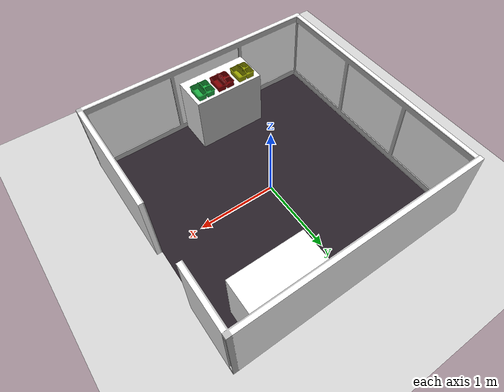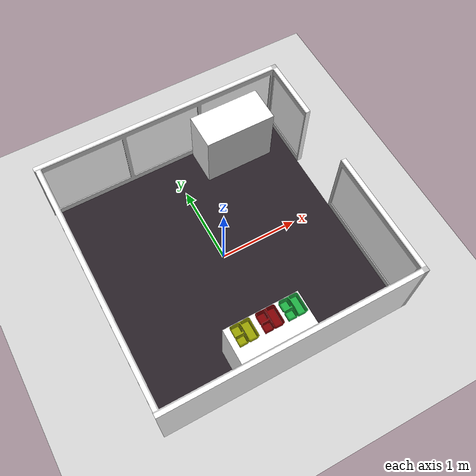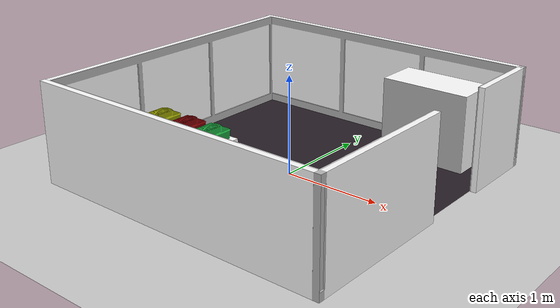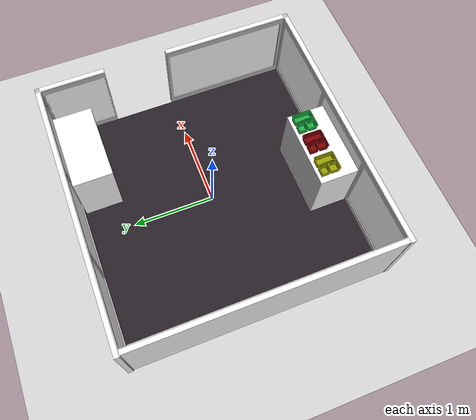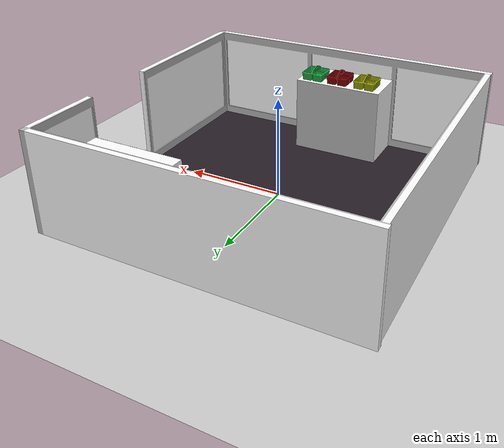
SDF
<?xml version="1.0" ?>
<sdf version="1.4">
  <world name="default">

    <include>
      <uri>model://ground_plane</uri>
      <pose>0 0 -0.005 0 0 0</pose>
    </include>

    <include>
      <uri>model://fetchit_arena</uri>
      <name>fetchit_arena1</name>
      <pose>0 0 0 0 0 0</pose>
    </include>

    <include>
      <uri>model://fetchit_table_fetch</uri>
      <name>fetchit_table_fetch1</name>
      <pose>-0.135 -1.28849 0.0 0 0 3.1416</pose>
    </include>

    <include>
      <uri>model://fetchit_table_theconstruct</uri>
      <name>fetchit_table_theconstruct1</name>
      <pose>0.815 1.28179 0.0 0 0 0</pose>
    </include>

    <include>
      <uri>model://caddy_green</uri>
      <name>caddy_green1</name>
      <pose>0.168355 -1.20441 0.826729 0 0 0</pose>
    </include>

    <include>
      <uri>model://caddy_red</uri>
      <name>caddy_red1</name>
      <pose>-0.113059 -1.20441 0.826729 0 0 0</pose>
    </include>

    <include>
      <uri>model://caddy_yellow</uri>
      <name>caddy_yellow1</name>
      <pose>-0.414898 -1.20441 0.826729 0 0 0</pose>
    </include>

    <light name='user_point_light_0' type='point'>
      <pose frame=''>1.0 1.0 3.5 0 0 0</pose>
      <diffuse>0.7 0.7 0.7 1</diffuse>
      <specular>0.1 0.1 0.1 1</specular>
      <attenuation>
        <range>10</range>
        <constant>0.5</constant>
        <linear>0.01</linear>
        <quadratic>0.001</quadratic>
      </attenuation>
      <cast_shadows>0</cast_shadows>
      <direction>0 0 -1</direction>
    </light>

    <light name='user_point_light_1' type='point'>
      <pose frame=''>-1.0 1.0 3.5 0 0 0</pose>
      <diffuse>0.7 0.7 0.7 1</diffuse>
      <specular>0.1 0.1 0.1 1</specular>
      <attenuation>
        <range>10</range>
        <constant>0.5</constant>
        <linear>0.01</linear>
        <quadratic>0.001</quadratic>
      </attenuation>
      <cast_shadows>0</cast_shadows>
      <direction>0 0 -1</direction>
    </light>

    <light name='user_point_light_2' type='point'>
      <pose frame=''>-1.0 -1.0 3.5 0 0 0</pose>
      <diffuse>0.7 0.7 0.7 1</diffuse>
      <specular>0.1 0.1 0.1 1</specular>
      <attenuation>
        <range>10</range>
        <constant>0.5</constant>
        <linear>0.01</linear>
        <quadratic>0.001</quadratic>
      </attenuation>
      <cast_shadows>0</cast_shadows>
      <direction>0 0 -1</direction>
    </light>

    <light name='user_point_light_3' type='point'>
      <pose frame=''>1.0 -1.0 3.5 0 0 0</pose>
      <diffuse>0.7 0.7 0.7 1</diffuse>
      <specular>0.1 0.1 0.1 1</specular>
      <attenuation>
        <range>10</range>
        <constant>0.5</constant>
        <linear>0.01</linear>
        <quadratic>0.001</quadratic>
      </attenuation>
      <cast_shadows>0</cast_shadows>
      <direction>0 0 -1</direction>
    </light>

  </world>
</sdf>

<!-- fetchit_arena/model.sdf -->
<sdf version='1.4'>
  <model name="fetchit_simple_env">
      <static>1</static>
      <link name='link'>
        <visual name='visual'>
          <geometry>
            <mesh>
              <uri>model://fetchit_arena/meshes/fetchit_arena1.dae</uri>
              <scale>1 1 1</scale>
            </mesh>
          </geometry>
        </visual>
        <collision name='collision'>
          <geometry>
            <mesh>
              <uri>model://fetchit_arena/meshes/fetchit_arena1.dae</uri>
              <scale>1 1 1</scale>
            </mesh>
          </geometry>
          <surface>
            <friction>
              <ode>
                <mu>30.0</mu>
                <mu2>30.0</mu2>
              </ode>
            </friction>
            <contact>
              <ode>
                <soft_cfm>0</soft_cfm>
    	          <soft_erp>0.2</soft_erp>
    	          <kp>1e+13</kp>
    	          <kd>1</kd>
    	          <max_vel>0.01</max_vel>
    	          <min_depth>0</min_depth>
              </ode>
            </contact>
          </surface>
        </collision>
        <velocity_decay>
          <linear>0.000000</linear>
          <angular>0.000000</angular>
        </velocity_decay>
        <self_collide>0</self_collide>
        <kinematic>0</kinematic>
        <gravity>1</gravity>
      </link>
  </model>
</sdf>

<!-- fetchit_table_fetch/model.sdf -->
<sdf version='1.4'>
  <model name="fetchit_table_fetch">
      <static>1</static>
      <link name='link'>
        <inertial>
          <mass>0.0592855</mass>
          <inertia>
            <ixx>2.31818050784e-05</ixx>
            <ixy>0.000000</ixy>
            <ixz>0.000000</ixz>
            <iyy>2.31851837098e-05</iyy>
            <iyz>0.000000</iyz>
            <izz>8.88944636856e-06</izz>
          </inertia>
        </inertial>
        <collision name='collision'>
          <geometry>
            <mesh>
              <uri>model://fetchit_table_fetch/meshes/simple_table.stl</uri>
              <scale>1 1 1</scale>
            </mesh>
          </geometry>
          <surface>
            <friction>
              <ode>
                <mu>30.0</mu>
                <mu2>30.0</mu2>
              </ode>
            </friction>
          </surface>
        </collision>
        <visual name='visual'>
          <geometry>
            <mesh>
              <uri>model://fetchit_table_fetch/meshes/table_fetch.dae</uri>
              <scale>1 1 1</scale>
            </mesh>
          </geometry>
        </visual>
        <velocity_decay>
          <linear>0.000000</linear>
          <angular>0.000000</angular>
        </velocity_decay>
        <self_collide>0</self_collide>
        <kinematic>0</kinematic>
        <gravity>1</gravity>
      </link>
  </model>
</sdf>

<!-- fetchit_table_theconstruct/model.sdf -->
<sdf version='1.4'>
  <model name="fetchit_table_theconstruct">
      <static>1</static>
      <link name='link'>
        <inertial>
          <mass>0.0592855</mass>
          <inertia>
            <ixx>2.31818050784e-05</ixx>
            <ixy>0.000000</ixy>
            <ixz>0.000000</ixz>
            <iyy>2.31851837098e-05</iyy>
            <iyz>0.000000</iyz>
            <izz>8.88944636856e-06</izz>
          </inertia>
        </inertial>
        <collision name='collision'>
          <geometry>
            <mesh>
              <uri>model://fetchit_table_theconstruct/meshes/simple_table.stl</uri>
              <scale>1 1 1</scale>
            </mesh>
          </geometry>
          <surface>
            <friction>
              <ode>
                <mu>30.0</mu>
                <mu2>30.0</mu2>
              </ode>
            </friction>
          </surface>
        </collision>
        <visual name='visual'>
          <geometry>
            <mesh>
              <uri>model://fetchit_table_theconstruct/meshes/table_theconstruct.dae</uri>
              <scale>1 1 1</scale>
            </mesh>
          </geometry>
        </visual>
        <velocity_decay>
          <linear>0.000000</linear>
          <angular>0.000000</angular>
        </velocity_decay>
        <self_collide>0</self_collide>
        <kinematic>0</kinematic>
        <gravity>1</gravity>
      </link>
  </model>
</sdf>

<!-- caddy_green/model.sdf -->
<sdf version='1.4'>
  <model name="caddy_green">
      <static>1</static>
      <link name='link'>
        <inertial>
          <mass>0.0680389</mass>
          <inertia>
            <ixx>0.00040636575898</ixx>
            <ixy>0.000000</ixy>
            <ixz>0.000000</ixz>
            <iyy>0.00040636575898</iyy>
            <iyz>0.000000</iyz>
            <izz>0.000625974918075</izz>
          </inertia>
        </inertial>
        <collision name='collision'>
          <geometry>
            <mesh>
              <uri>model://caddy_green/meshes/Romanoff_Small_Utility_Caddy_cof.stl</uri>
              <scale>1 1 1</scale>
            </mesh>
          </geometry>
          <surface>
            <friction>
              <ode>
                <mu>1.0</mu>
                <mu2>1.0</mu2>
              </ode>
            </friction>
          </surface>
        </collision>

        <visual name='visual'>
          <geometry>
            <mesh>
              <uri>model://caddy_green/meshes/Romanoff_Small_Utility_Caddy_cof_green.dae</uri>
              <scale>1 1 1</scale>
            </mesh>
          </geometry>
        </visual>
        <velocity_decay>
          <linear>0.000000</linear>
          <angular>0.000000</angular>
        </velocity_decay>
        <self_collide>0</self_collide>
        <kinematic>0</kinematic>
        <gravity>1</gravity>
      </link>
  </model>
</sdf>

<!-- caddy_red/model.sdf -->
<sdf version='1.4'>
  <model name="caddy_red">
      <static>1</static>
      <link name='link'>
        <inertial>
          <mass>0.0680389</mass>
          <inertia>
            <ixx>0.00040636575898</ixx>
            <ixy>0.000000</ixy>
            <ixz>0.000000</ixz>
            <iyy>0.00040636575898</iyy>
            <iyz>0.000000</iyz>
            <izz>0.000625974918075</izz>
          </inertia>
        </inertial>
        <collision name='collision'>
          <geometry>
            <mesh>
              <uri>model://caddy_red/meshes/Romanoff_Small_Utility_Caddy_cof.stl</uri>
              <scale>1 1 1</scale>
            </mesh>
          </geometry>
          <surface>
            <friction>
              <ode>
                <mu>1.0</mu>
                <mu2>1.0</mu2>
              </ode>
            </friction>
          </surface>
        </collision>

        <visual name='visual'>
          <geometry>
            <mesh>
              <uri>model://caddy_red/meshes/Romanoff_Small_Utility_Caddy_cof_red.dae</uri>
              <scale>1 1 1</scale>
            </mesh>
          </geometry>
        </visual>
        <velocity_decay>
          <linear>0.000000</linear>
          <angular>0.000000</angular>
        </velocity_decay>
        <self_collide>0</self_collide>
        <kinematic>0</kinematic>
        <gravity>1</gravity>
      </link>
  </model>
</sdf>

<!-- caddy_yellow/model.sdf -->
<sdf version='1.4'>
  <model name="caddy_yellow">
      <static>1</static>
      <link name='link'>
        <inertial>
          <mass>0.0680389</mass>
          <inertia>
            <ixx>0.00040636575898</ixx>
            <ixy>0.000000</ixy>
            <ixz>0.000000</ixz>
            <iyy>0.00040636575898</iyy>
            <iyz>0.000000</iyz>
            <izz>0.000625974918075</izz>
          </inertia>
        </inertial>
        <collision name='collision'>
          <geometry>
            <mesh>
              <uri>model://caddy_yellow/meshes/Romanoff_Small_Utility_Caddy_cof.stl</uri>
              <scale>1 1 1</scale>
            </mesh>
          </geometry>
          <surface>
            <friction>
              <ode>
                <mu>1.0</mu>
                <mu2>1.0</mu2>
              </ode>
            </friction>
          </surface>
        </collision>

        <visual name='visual'>
          <geometry>
            <mesh>
              <uri>model://caddy_yellow/meshes/Romanoff_Small_Utility_Caddy_cof_yellow.dae</uri>
              <scale>1 1 1</scale>
            </mesh>
          </geometry>
        </visual>
        <velocity_decay>
          <linear>0.000000</linear>
          <angular>0.000000</angular>
        </velocity_decay>
        <self_collide>0</self_collide>
        <kinematic>0</kinematic>
        <gravity>1</gravity>
      </link>
  </model>
</sdf>
